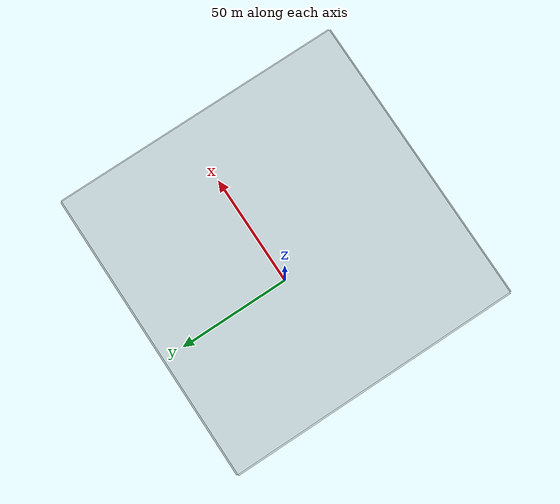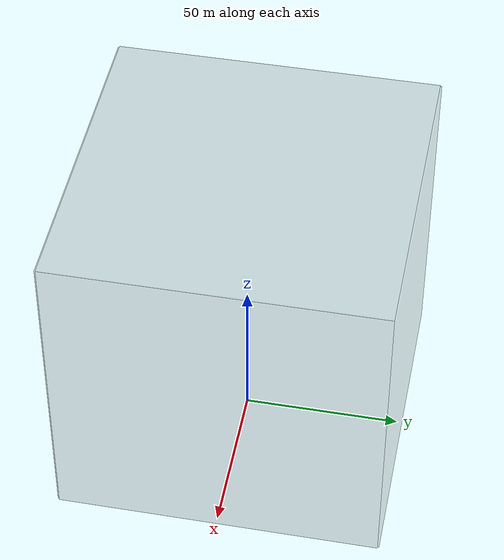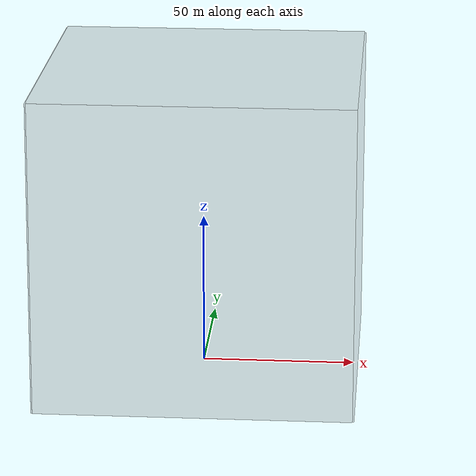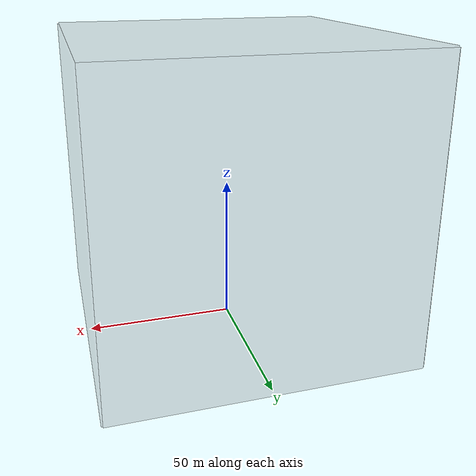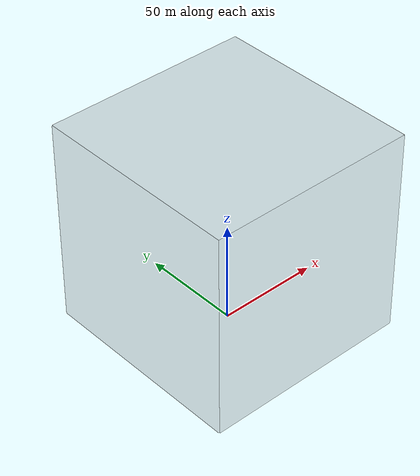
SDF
<!-- modelsmith seed: 1717861289 -->
<sdf version='1.11'>
  <world name='world_0'>

    <model name='ground_model'>
      <static>true</static>
      <self_collide>false</self_collide>
      <allow_auto_disable>true</allow_auto_disable>
      <enable_wind>false</enable_wind>
      <pose>0 0 0 0 0 0</pose>
      <link name='ground_link'>
        <pose>0 0 0 0 0 0</pose>
        <inertial>
          <pose>0 0 0 0 0 0</pose>
          <mass>1</mass>
          <inertia>
            <ixx>1</ixx>
            <ixy>0</ixy>
            <ixz>0</ixz>
            <iyy>1</iyy>
            <iyz>0</iyz>
            <izz>1</izz>
          </inertia>
        </inertial>
        <enable_wind>false</enable_wind>
        <collision name='ground_collision'>
          <pose>0 0 0 0 0 0</pose>
          <geometry>
            <plane>
              <normal>0 0 1</normal>
              <size>100 100</size>
            </plane>
          </geometry>
          <surface>
            <contact>
              <collide_bitmask>255</collide_bitmask>
            </contact>
            <friction>
              <ode>
                <mu>1</mu>
                <mu2>1</mu2>
                <slip1>0</slip1>
                <slip2>0</slip2>
                <fdir1>0 0 0</fdir1>
              </ode>
            </friction>
          </surface>
        </collision>
      </link>
    </model>
    <model name='ceiling_model'>
      <static>true</static>
      <self_collide>false</self_collide>
      <allow_auto_disable>true</allow_auto_disable>
      <enable_wind>false</enable_wind>
      <pose>0 0 100 0 0 0</pose>
      <link name='ceiling_link'>
        <pose>0 0 0 0 0 0</pose>
        <inertial>
          <pose>0 0 0 0 0 0</pose>
          <mass>1</mass>
          <inertia>
            <ixx>1</ixx>
            <ixy>0</ixy>
            <ixz>0</ixz>
            <iyy>1</iyy>
            <iyz>0</iyz>
            <izz>1</izz>
          </inertia>
        </inertial>
        <enable_wind>false</enable_wind>
        <collision name='ceiling_collision'>
          <pose>0 0 0 0 0 0</pose>
          <geometry>
            <box>
              <size>102 102 3</size>
            </box>
          </geometry>
          <surface>
            <contact>
              <collide_bitmask>255</collide_bitmask>
            </contact>
            <friction>
              <ode>
                <mu>1</mu>
                <mu2>1</mu2>
                <slip1>0</slip1>
                <slip2>0</slip2>
                <fdir1>0 0 0</fdir1>
              </ode>
            </friction>
          </surface>
        </collision>
        <visual name='ceiling_visual'>
          <pose>0 0 0 0 0 0</pose>
          <geometry>
            <box>
              <size>102 102 3</size>
            </box>
          </geometry>
          <cast_shadows>true</cast_shadows>
          <laser_retro>0</laser_retro>
          <transparency>0</transparency>
          <visibility_flags>4294967295</visibility_flags>
          <material>
            <ambient>0.200000003 0.200000003 0.200000003 0.200000003</ambient>
            <diffuse>0.200000003 0.200000003 0.200000003 0.200000003</diffuse>
            <specular>0 0 0 1</specular>
            <emissive>0 0 0 1</emissive>
            <render_order>0</render_order>
            <lighting>true</lighting>
            <double_sided>false</double_sided>
            <shader type='pixel'/>
          </material>
        </visual>
      </link>
    </model>
    <model name='west_model'>
      <static>true</static>
      <self_collide>false</self_collide>
      <allow_auto_disable>true</allow_auto_disable>
      <enable_wind>false</enable_wind>
      <pose>0 50 50 0 0 0</pose>
      <link name='west_link'>
        <pose>0 0 0 0 0 0</pose>
        <inertial>
          <pose>0 0 0 0 0 0</pose>
          <mass>1</mass>
          <inertia>
            <ixx>1</ixx>
            <ixy>0</ixy>
            <ixz>0</ixz>
            <iyy>1</iyy>
            <iyz>0</iyz>
            <izz>1</izz>
          </inertia>
        </inertial>
        <enable_wind>false</enable_wind>
        <collision name='west_collision'>
          <pose>0 0 0 0 0 0</pose>
          <geometry>
            <box>
              <size>102 3 102</size>
            </box>
          </geometry>
          <surface>
            <contact>
              <collide_bitmask>255</collide_bitmask>
            </contact>
            <friction>
              <ode>
                <mu>1</mu>
                <mu2>1</mu2>
                <slip1>0</slip1>
                <slip2>0</slip2>
                <fdir1>0 0 0</fdir1>
              </ode>
            </friction>
          </surface>
        </collision>
        <visual name='west_visual'>
          <pose>0 0 0 0 0 0</pose>
          <geometry>
            <box>
              <size>102 3 102</size>
            </box>
          </geometry>
          <cast_shadows>true</cast_shadows>
          <laser_retro>0</laser_retro>
          <transparency>0</transparency>
          <visibility_flags>4294967295</visibility_flags>
          <material>
            <ambient>0.200000003 0.200000003 0.200000003 0.200000003</ambient>
            <diffuse>0.200000003 0.200000003 0.200000003 0.200000003</diffuse>
            <specular>0 0 0 1</specular>
            <emissive>0 0 0 1</emissive>
            <render_order>0</render_order>
            <lighting>true</lighting>
            <double_sided>false</double_sided>
            <shader type='pixel'/>
          </material>
        </visual>
      </link>
    </model>
    <model name='east_model'>
      <static>true</static>
      <self_collide>false</self_collide>
      <allow_auto_disable>true</allow_auto_disable>
      <enable_wind>false</enable_wind>
      <pose>0 -50 50 0 0 0</pose>
      <link name='east_link'>
        <pose>0 0 0 0 0 0</pose>
        <inertial>
          <pose>0 0 0 0 0 0</pose>
          <mass>1</mass>
          <inertia>
            <ixx>1</ixx>
            <ixy>0</ixy>
            <ixz>0</ixz>
            <iyy>1</iyy>
            <iyz>0</iyz>
            <izz>1</izz>
          </inertia>
        </inertial>
        <enable_wind>false</enable_wind>
        <collision name='east_collision'>
          <pose>0 0 0 0 0 0</pose>
          <geometry>
            <box>
              <size>102 3 102</size>
            </box>
          </geometry>
          <surface>
            <contact>
              <collide_bitmask>255</collide_bitmask>
            </contact>
            <friction>
              <ode>
                <mu>1</mu>
                <mu2>1</mu2>
                <slip1>0</slip1>
                <slip2>0</slip2>
                <fdir1>0 0 0</fdir1>
              </ode>
            </friction>
          </surface>
        </collision>
        <visual name='east_visual'>
          <pose>0 0 0 0 0 0</pose>
          <geometry>
            <box>
              <size>102 3 102</size>
            </box>
          </geometry>
          <cast_shadows>true</cast_shadows>
          <laser_retro>0</laser_retro>
          <transparency>0</transparency>
          <visibility_flags>4294967295</visibility_flags>
          <material>
            <ambient>0.200000003 0.200000003 0.200000003 0.200000003</ambient>
            <diffuse>0.200000003 0.200000003 0.200000003 0.200000003</diffuse>
            <specular>0 0 0 1</specular>
            <emissive>0 0 0 1</emissive>
            <render_order>0</render_order>
            <lighting>true</lighting>
            <double_sided>false</double_sided>
            <shader type='pixel'/>
          </material>
        </visual>
      </link>
    </model>
    <model name='north_model'>
      <static>true</static>
      <self_collide>false</self_collide>
      <allow_auto_disable>true</allow_auto_disable>
      <enable_wind>false</enable_wind>
      <pose>50 0 50 0 0 0</pose>
      <link name='north_link'>
        <pose>0 0 0 0 0 0</pose>
        <inertial>
          <pose>0 0 0 0 0 0</pose>
          <mass>1</mass>
          <inertia>
            <ixx>1</ixx>
            <ixy>0</ixy>
            <ixz>0</ixz>
            <iyy>1</iyy>
            <iyz>0</iyz>
            <izz>1</izz>
          </inertia>
        </inertial>
        <enable_wind>false</enable_wind>
        <collision name='north_collision'>
          <pose>0 0 0 0 0 0</pose>
          <geometry>
            <box>
              <size>3 102 102</size>
            </box>
          </geometry>
          <surface>
            <contact>
              <collide_bitmask>255</collide_bitmask>
            </contact>
            <friction>
              <ode>
                <mu>1</mu>
                <mu2>1</mu2>
                <slip1>0</slip1>
                <slip2>0</slip2>
                <fdir1>0 0 0</fdir1>
              </ode>
            </friction>
          </surface>
        </collision>
        <visual name='north_visual'>
          <pose>0 0 0 0 0 0</pose>
          <geometry>
            <box>
              <size>3 102 102</size>
            </box>
          </geometry>
          <cast_shadows>true</cast_shadows>
          <laser_retro>0</laser_retro>
          <transparency>0</transparency>
          <visibility_flags>4294967295</visibility_flags>
          <material>
            <ambient>0.200000003 0.200000003 0.200000003 0.200000003</ambient>
            <diffuse>0.200000003 0.200000003 0.200000003 0.200000003</diffuse>
            <specular>0 0 0 1</specular>
            <emissive>0 0 0 1</emissive>
            <render_order>0</render_order>
            <lighting>true</lighting>
            <double_sided>false</double_sided>
            <shader type='pixel'/>
          </material>
        </visual>
      </link>
    </model>
    <model name='south_model'>
      <static>true</static>
      <self_collide>false</self_collide>
      <allow_auto_disable>true</allow_auto_disable>
      <enable_wind>false</enable_wind>
      <pose>-50 0 50 0 0 0</pose>
      <link name='south_link'>
        <pose>0 0 0 0 0 0</pose>
        <inertial>
          <pose>0 0 0 0 0 0</pose>
          <mass>1</mass>
          <inertia>
            <ixx>1</ixx>
            <ixy>0</ixy>
            <ixz>0</ixz>
            <iyy>1</iyy>
            <iyz>0</iyz>
            <izz>1</izz>
          </inertia>
        </inertial>
        <enable_wind>false</enable_wind>
        <collision name='south_collision'>
          <pose>0 0 0 0 0 0</pose>
          <geometry>
            <box>
              <size>3 102 102</size>
            </box>
          </geometry>
          <surface>
            <contact>
              <collide_bitmask>255</collide_bitmask>
            </contact>
            <friction>
              <ode>
                <mu>1</mu>
                <mu2>1</mu2>
                <slip1>0</slip1>
                <slip2>0</slip2>
                <fdir1>0 0 0</fdir1>
              </ode>
            </friction>
          </surface>
        </collision>
        <visual name='south_visual'>
          <pose>0 0 0 0 0 0</pose>
          <geometry>
            <box>
              <size>3 102 102</size>
            </box>
          </geometry>
          <cast_shadows>true</cast_shadows>
          <laser_retro>0</laser_retro>
          <transparency>0</transparency>
          <visibility_flags>4294967295</visibility_flags>
          <material>
            <ambient>0.200000003 0.200000003 0.200000003 0.200000003</ambient>
            <diffuse>0.200000003 0.200000003 0.200000003 0.200000003</diffuse>
            <specular>0 0 0 1</specular>
            <emissive>0 0 0 1</emissive>
            <render_order>0</render_order>
            <lighting>true</lighting>
            <double_sided>false</double_sided>
            <shader type='pixel'/>
          </material>
        </visual>
      </link>
    </model>
  </world>
</sdf>
